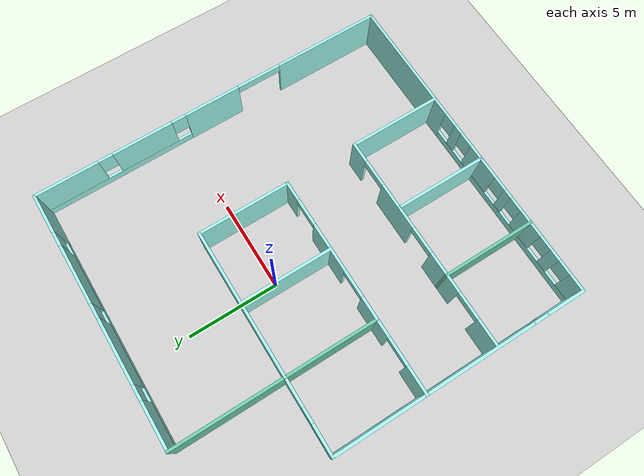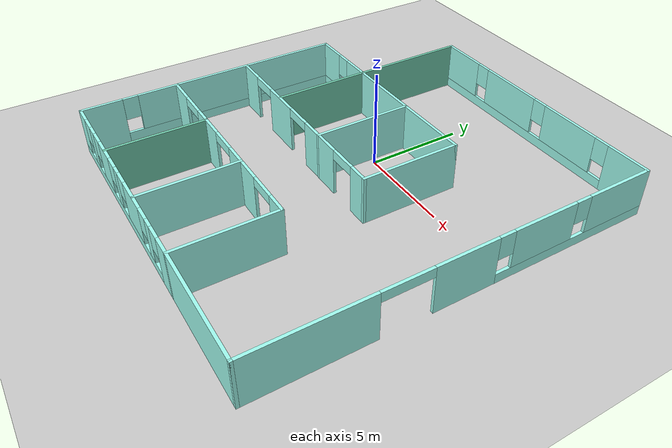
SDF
<sdf version="1.7">
 <world name="default">
  <light name="sun" type="directional">
   <pose>0 0 10 0 -0 0</pose>
   <diffuse>0.8 0.8 0.8 1</diffuse>
   <specular>0.2 0.2 0.2 1</specular>
   <attenuation>
    <range>1000</range>
    <constant>0.9</constant>
    <linear>0.01</linear>
    <quadratic>0.001</quadratic>
   </attenuation>
   <direction>-0.5 0.1 -0.9</direction>
   <spot><inner_angle>0</inner_angle><outer_angle>0</outer_angle><falloff>0</falloff></spot>
  </light>
  <model name="ground_plane">
   <static>1</static>
   <link name="link">
    <collision name="collision">
     <geometry><plane><normal>0 0 1</normal><size>100 100</size></plane></geometry>
     <surface>
      <contact><collide_bitmask>65535</collide_bitmask></contact>
      <friction><ode><mu>100</mu><mu2>50</mu2></ode></friction>
     </surface>
    </collision>
    <visual name="visual">
     <cast_shadows>0</cast_shadows>
     <geometry><plane><normal>0 0 1</normal><size>100 100</size></plane></geometry>
     <material>
      <script><uri>file://media/materials/scripts/gazebo.material</uri><name>Gazebo/Grey</name></script>
     </material>
    </visual>
   </link>
  </model>
  <gravity>0 0 -9.8</gravity>
  <magnetic_field>6e-06 2.3e-05 -4.2e-05</magnetic_field>
  <atmosphere type="adiabatic"/>
  <physics type="ode">
   <max_step_size>0.001</max_step_size>
   <real_time_factor>1</real_time_factor>
   <real_time_update_rate>1000</real_time_update_rate>
  </physics>
  <scene><ambient>0.4 0.4 0.4 1</ambient><background>0.7 0.7 0.7 1</background><shadows>1</shadows></scene>
  <spherical_coordinates>
   <surface_model>EARTH_WGS84</surface_model>
   <latitude_deg>0</latitude_deg>
   <longitude_deg>0</longitude_deg>
   <elevation>0</elevation>
   <heading_deg>0</heading_deg>
  </spherical_coordinates>
  <model name="Building">
   <pose>0.605787 -1.9571 0 0 -0 1.57079</pose>
   <link name="Wall_0">
    <pose>-10 0 0 0 -0 1.5708</pose>
    <visual name="Wall_0_Visual_0">
     <pose>-5.53335 0 1.25 0 -0 0</pose>
     <geometry><box><size>7.0833 0.15 2.5</size></box></geometry>
     <material>
      <script><uri>file://media/materials/scripts/gazebo.material</uri><name>Gazebo/Grey</name></script>
      <ambient>0.635294 0.996078 0.945098 1</ambient>
     </material>
     <meta><layer>0</layer></meta>
    </visual>
    <collision name="Wall_0_Collision_0">
     <geometry><box><size>7.0833 0.15 2.5</size></box></geometry>
     <pose>-5.53335 0 1.25 0 -0 0</pose>
    </collision>
    <visual name="Wall_0_Visual_1">
     <pose>3.54165 0 0.25 0 -0 0</pose>
     <geometry><box><size>11.0667 0.15 0.5</size></box></geometry>
     <material>
      <script><uri>file://media/materials/scripts/gazebo.material</uri><name>Gazebo/Grey</name></script>
      <ambient>0.635294 0.996078 0.945098 1</ambient>
     </material>
     <meta><layer>0</layer></meta>
    </visual>
    <collision name="Wall_0_Collision_1">
     <geometry><box><size>11.0667 0.15 0.5</size></box></geometry>
     <pose>3.54165 0 0.25 0 -0 0</pose>
    </collision>
    <visual name="Wall_0_Visual_2">
     <pose>-0.917108 0 1.5 0 -0 0</pose>
     <geometry><box><size>0.549194 0.15 2</size></box></geometry>
     <material>
      <script><uri>file://media/materials/scripts/gazebo.material</uri><name>Gazebo/Grey</name></script>
      <ambient>0.635294 0.996078 0.945098 1</ambient>
     </material>
     <meta><layer>0</layer></meta>
    </visual>
    <collision name="Wall_0_Collision_2">
     <geometry><box><size>0.549194 0.15 2</size></box></geometry>
     <pose>-0.917108 0 1.5 0 -0 0</pose>
    </collision>
    <visual name="Wall_0_Visual_3">
     <pose>1.17647 0 1.5 0 -0 0</pose>
     <geometry><box><size>2.03796 0.15 2</size></box></geometry>
     <material>
      <script><uri>file://media/materials/scripts/gazebo.material</uri><name>Gazebo/Grey</name></script>
      <ambient>0.635294 0.996078 0.945098 1</ambient>
     </material>
     <meta><layer>0</layer></meta>
    </visual>
    <collision name="Wall_0_Collision_3">
     <geometry><box><size>2.03796 0.15 2</size></box></geometry>
     <pose>1.17647 0 1.5 0 -0 0</pose>
    </collision>
    <visual name="Wall_0_Visual_4">
     <pose>3.24678 0 1.5 0 -0 0</pose>
     <geometry><box><size>0.50267 0.15 2</size></box></geometry>
     <material>
      <script><uri>file://media/materials/scripts/gazebo.material</uri><name>Gazebo/Grey</name></script>
      <ambient>0.635294 0.996078 0.945098 1</ambient>
     </material>
     <meta><layer>0</layer></meta>
    </visual>
    <collision name="Wall_0_Collision_4">
     <geometry><box><size>0.50267 0.15 2</size></box></geometry>
     <pose>3.24678 0 1.5 0 -0 0</pose>
    </collision>
    <visual name="Wall_0_Visual_5">
     <pose>5.06121 0 1.5 0 -0 0</pose>
     <geometry><box><size>1.5262 0.15 2</size></box></geometry>
     <material>
      <script><uri>file://media/materials/scripts/gazebo.material</uri><name>Gazebo/Grey</name></script>
      <ambient>0.635294 0.996078 0.945098 1</ambient>
     </material>
     <meta><layer>0</layer></meta>
    </visual>
    <collision name="Wall_0_Collision_5">
     <geometry><box><size>1.5262 0.15 2</size></box></geometry>
     <pose>5.06121 0 1.5 0 -0 0</pose>
    </collision>
    <visual name="Wall_0_Visual_6">
     <pose>6.94543 0 1.5 0 -0 0</pose>
     <geometry><box><size>0.642243 0.15 2</size></box></geometry>
     <material>
      <script><uri>file://media/materials/scripts/gazebo.material</uri><name>Gazebo/Grey</name></script>
      <ambient>0.635294 0.996078 0.945098 1</ambient>
     </material>
     <meta><layer>0</layer></meta>
    </visual>
    <collision name="Wall_0_Collision_6">
     <geometry><box><size>0.642243 0.15 2</size></box></geometry>
     <pose>6.94543 0 1.5 0 -0 0</pose>
    </collision>
    <visual name="Wall_0_Visual_7">
     <pose>8.57078 0 1.5 0 -0 0</pose>
     <geometry><box><size>1.00845 0.15 2</size></box></geometry>
     <material>
      <script><uri>file://media/materials/scripts/gazebo.material</uri><name>Gazebo/Grey</name></script>
      <ambient>0.635294 0.996078 0.945098 1</ambient>
     </material>
     <meta><layer>0</layer></meta>
    </visual>
    <collision name="Wall_0_Collision_7">
     <geometry><box><size>1.00845 0.15 2</size></box></geometry>
     <pose>8.57078 0 1.5 0 -0 0</pose>
    </collision>
    <visual name="Wall_0_Visual_8">
     <pose>-1.5917 0 1.9 0 -0 0</pose>
     <geometry><box><size>0.8 0.15 1.2</size></box></geometry>
     <material>
      <script><uri>file://media/materials/scripts/gazebo.material</uri><name>Gazebo/Grey</name></script>
      <ambient>0.635294 0.996078 0.945098 1</ambient>
     </material>
     <meta><layer>0</layer></meta>
    </visual>
    <collision name="Wall_0_Collision_8">
     <geometry><box><size>0.8 0.15 1.2</size></box></geometry>
     <pose>-1.5917 0 1.9 0 -0 0</pose>
    </collision>
    <visual name="Wall_0_Visual_9">
     <pose>-0.242511 0 1.9 0 -0 0</pose>
     <geometry><box><size>0.8 0.15 1.2</size></box></geometry>
     <material>
      <script><uri>file://media/materials/scripts/gazebo.material</uri><name>Gazebo/Grey</name></script>
      <ambient>0.635294 0.996078 0.945098 1</ambient>
     </material>
     <meta><layer>0</layer></meta>
    </visual>
    <collision name="Wall_0_Collision_9">
     <geometry><box><size>0.8 0.15 1.2</size></box></geometry>
     <pose>-0.242511 0 1.9 0 -0 0</pose>
    </collision>
    <visual name="Wall_0_Visual_10">
     <pose>2.59545 0 1.9 0 -0 0</pose>
     <geometry><box><size>0.8 0.15 1.2</size></box></geometry>
     <material>
      <script><uri>file://media/materials/scripts/gazebo.material</uri><name>Gazebo/Grey</name></script>
      <ambient>0.635294 0.996078 0.945098 1</ambient>
     </material>
     <meta><layer>0</layer></meta>
    </visual>
    <collision name="Wall_0_Collision_10">
     <geometry><box><size>0.8 0.15 1.2</size></box></geometry>
     <pose>2.59545 0 1.9 0 -0 0</pose>
    </collision>
    <visual name="Wall_0_Visual_11">
     <pose>3.89812 0 1.9 0 -0 0</pose>
     <geometry><box><size>0.8 0.15 1.2</size></box></geometry>
     <material>
      <script><uri>file://media/materials/scripts/gazebo.material</uri><name>Gazebo/Grey</name></script>
      <ambient>0.635294 0.996078 0.945098 1</ambient>
     </material>
     <meta><layer>0</layer></meta>
    </visual>
    <collision name="Wall_0_Collision_11">
     <geometry><box><size>0.8 0.15 1.2</size></box></geometry>
     <pose>3.89812 0 1.9 0 -0 0</pose>
    </collision>
    <visual name="Wall_0_Visual_12">
     <pose>6.22431 0 1.9 0 -0 0</pose>
     <geometry><box><size>0.8 0.15 1.2</size></box></geometry>
     <material>
      <script><uri>file://media/materials/scripts/gazebo.material</uri><name>Gazebo/Grey</name></script>
      <ambient>0.635294 0.996078 0.945098 1</ambient>
     </material>
     <meta><layer>0</layer></meta>
    </visual>
    <collision name="Wall_0_Collision_12">
     <geometry><box><size>0.8 0.15 1.2</size></box></geometry>
     <pose>6.22431 0 1.9 0 -0 0</pose>
    </collision>
    <visual name="Wall_0_Visual_13">
     <pose>7.66655 0 1.9 0 -0 0</pose>
     <geometry><box><size>0.8 0.15 1.2</size></box></geometry>
     <material>
      <script><uri>file://media/materials/scripts/gazebo.material</uri><name>Gazebo/Grey</name></script>
      <ambient>0.635294 0.996078 0.945098 1</ambient>
     </material>
     <meta><layer>0</layer></meta>
    </visual>
    <collision name="Wall_0_Collision_13">
     <geometry><box><size>0.8 0.15 1.2</size></box></geometry>
     <pose>7.66655 0 1.9 0 -0 0</pose>
    </collision>
   </link>
   <link name="Wall_10">
    <pose>10 -2 0 0 -0 1.5708</pose>
    <visual name="Wall_10_Visual_0">
     <pose>-5.92933 0 1.25 0 -0 0</pose>
     <geometry><box><size>2.29133 0.15 2.5</size></box></geometry>
     <material>
      <script><uri>file://media/materials/scripts/gazebo.material</uri><name>Gazebo/Grey</name></script>
      <ambient>0.635294 0.996078 0.945098 1</ambient>
     </material>
     <meta><layer>0</layer></meta>
    </visual>
    <collision name="Wall_10_Collision_0">
     <geometry><box><size>2.29133 0.15 2.5</size></box></geometry>
     <pose>-5.92933 0 1.25 0 -0 0</pose>
    </collision>
    <visual name="Wall_10_Visual_1">
     <pose>1.14567 0 0.25 0 -0 0</pose>
     <geometry><box><size>11.8587 0.15 0.5</size></box></geometry>
     <material>
      <script><uri>file://media/materials/scripts/gazebo.material</uri><name>Gazebo/Grey</name></script>
      <ambient>0.635294 0.996078 0.945098 1</ambient>
     </material>
     <meta><layer>0</layer></meta>
    </visual>
    <collision name="Wall_10_Collision_1">
     <geometry><box><size>11.8587 0.15 0.5</size></box></geometry>
     <pose>1.14567 0 0.25 0 -0 0</pose>
    </collision>
    <visual name="Wall_10_Visual_2">
     <pose>-2.3256 0 1.5 0 -0 0</pose>
     <geometry><box><size>3.31613 0.15 2</size></box></geometry>
     <material>
      <script><uri>file://media/materials/scripts/gazebo.material</uri><name>Gazebo/Grey</name></script>
      <ambient>0.635294 0.996078 0.945098 1</ambient>
     </material>
     <meta><layer>0</layer></meta>
    </visual>
    <collision name="Wall_10_Collision_2">
     <geometry><box><size>3.31613 0.15 2</size></box></geometry>
     <pose>-2.3256 0 1.5 0 -0 0</pose>
    </collision>
    <visual name="Wall_10_Visual_3">
     <pose>1.90807 0 1.5 0 -0 0</pose>
     <geometry><box><size>3.55122 0.15 2</size></box></geometry>
     <material>
      <script><uri>file://media/materials/scripts/gazebo.material</uri><name>Gazebo/Grey</name></script>
      <ambient>0.635294 0.996078 0.945098 1</ambient>
     </material>
     <meta><layer>0</layer></meta>
    </visual>
    <collision name="Wall_10_Collision_3">
     <geometry><box><size>3.55122 0.15 2</size></box></geometry>
     <pose>1.90807 0 1.5 0 -0 0</pose>
    </collision>
    <visual name="Wall_10_Visual_4">
     <pose>5.77934 0 1.5 0 -0 0</pose>
     <geometry><box><size>2.59131 0.15 2</size></box></geometry>
     <material>
      <script><uri>file://media/materials/scripts/gazebo.material</uri><name>Gazebo/Grey</name></script>
      <ambient>0.635294 0.996078 0.945098 1</ambient>
     </material>
     <meta><layer>0</layer></meta>
    </visual>
    <collision name="Wall_10_Collision_4">
     <geometry><box><size>2.59131 0.15 2</size></box></geometry>
     <pose>5.77934 0 1.5 0 -0 0</pose>
    </collision>
    <visual name="Wall_10_Visual_5">
     <pose>-4.38367 0 1.9 0 -0 0</pose>
     <geometry><box><size>0.8 0.15 1.2</size></box></geometry>
     <material>
      <script><uri>file://media/materials/scripts/gazebo.material</uri><name>Gazebo/Grey</name></script>
      <ambient>0.635294 0.996078 0.945098 1</ambient>
     </material>
     <meta><layer>0</layer></meta>
    </visual>
    <collision name="Wall_10_Collision_5">
     <geometry><box><size>0.8 0.15 1.2</size></box></geometry>
     <pose>-4.38367 0 1.9 0 -0 0</pose>
    </collision>
    <visual name="Wall_10_Visual_6">
     <pose>-0.267537 0 1.9 0 -0 0</pose>
     <geometry><box><size>0.8 0.15 1.2</size></box></geometry>
     <material>
      <script><uri>file://media/materials/scripts/gazebo.material</uri><name>Gazebo/Grey</name></script>
      <ambient>0.635294 0.996078 0.945098 1</ambient>
     </material>
     <meta><layer>0</layer></meta>
    </visual>
    <collision name="Wall_10_Collision_6">
     <geometry><box><size>0.8 0.15 1.2</size></box></geometry>
     <pose>-0.267537 0 1.9 0 -0 0</pose>
    </collision>
    <visual name="Wall_10_Visual_7">
     <pose>4.08369 0 1.9 0 -0 0</pose>
     <geometry><box><size>0.8 0.15 1.2</size></box></geometry>
     <material>
      <script><uri>file://media/materials/scripts/gazebo.material</uri><name>Gazebo/Grey</name></script>
      <ambient>0.635294 0.996078 0.945098 1</ambient>
     </material>
     <meta><layer>0</layer></meta>
    </visual>
    <collision name="Wall_10_Collision_7">
     <geometry><box><size>0.8 0.15 1.2</size></box></geometry>
     <pose>4.08369 0 1.9 0 -0 0</pose>
    </collision>
   </link>
   <link name="Wall_12">
    <pose>-5 3 0 0 -0 1.5708</pose>
    <visual name="Wall_12_Visual_0">
     <pose>-5.49899 0 1.25 0 -0 0</pose>
     <geometry><box><size>1.15201 0.15 2.5</size></box></geometry>
     <material>
      <script><uri>file://media/materials/scripts/gazebo.material</uri><name>Gazebo/Grey</name></script>
      <ambient>0.635294 0.996078 0.945098 1</ambient>
     </material>
     <meta><layer>0</layer></meta>
    </visual>
    <collision name="Wall_12_Collision_0">
     <geometry><box><size>1.15201 0.15 2.5</size></box></geometry>
     <pose>-5.49899 0 1.25 0 -0 0</pose>
    </collision>
    <visual name="Wall_12_Visual_1">
     <pose>-2.10268 0 1.25 0 -0 0</pose>
     <geometry><box><size>2.64063 0.15 2.5</size></box></geometry>
     <material>
      <script><uri>file://media/materials/scripts/gazebo.material</uri><name>Gazebo/Grey</name></script>
      <ambient>0.635294 0.996078 0.945098 1</ambient>
     </material>
     <meta><layer>0</layer></meta>
    </visual>
    <collision name="Wall_12_Collision_1">
     <geometry><box><size>2.64063 0.15 2.5</size></box></geometry>
     <pose>-2.10268 0 1.25 0 -0 0</pose>
    </collision>
    <visual name="Wall_12_Visual_2">
     <pose>1.85186 0 1.25 0 -0 0</pose>
     <geometry><box><size>2.26844 0.15 2.5</size></box></geometry>
     <material>
      <script><uri>file://media/materials/scripts/gazebo.material</uri><name>Gazebo/Grey</name></script>
      <ambient>0.635294 0.996078 0.945098 1</ambient>
     </material>
     <meta><layer>0</layer></meta>
    </visual>
    <collision name="Wall_12_Collision_2">
     <geometry><box><size>2.26844 0.15 2.5</size></box></geometry>
     <pose>1.85186 0 1.25 0 -0 0</pose>
    </collision>
    <visual name="Wall_12_Visual_3">
     <pose>5.28054 0 1.25 0 -0 0</pose>
     <geometry><box><size>1.58892 0.15 2.5</size></box></geometry>
     <material>
      <script><uri>file://media/materials/scripts/gazebo.material</uri><name>Gazebo/Grey</name></script>
      <ambient>0.635294 0.996078 0.945098 1</ambient>
     </material>
     <meta><layer>0</layer></meta>
    </visual>
    <collision name="Wall_12_Collision_3">
     <geometry><box><size>1.58892 0.15 2.5</size></box></geometry>
     <pose>5.28054 0 1.25 0 -0 0</pose>
    </collision>
    <visual name="Wall_12_Visual_4">
     <pose>-4.17299 0 2.25 0 -0 0</pose>
     <geometry><box><size>1.5 0.15 0.5</size></box></geometry>
     <material>
      <script><uri>file://media/materials/scripts/gazebo.material</uri><name>Gazebo/Grey</name></script>
      <ambient>0.635294 0.996078 0.945098 1</ambient>
     </material>
     <meta><layer>0</layer></meta>
    </visual>
    <collision name="Wall_12_Collision_4">
     <geometry><box><size>1.5 0.15 0.5</size></box></geometry>
     <pose>-4.17299 0 2.25 0 -0 0</pose>
    </collision>
    <visual name="Wall_12_Visual_5">
     <pose>-0.032361 0 2.25 0 -0 0</pose>
     <geometry><box><size>1.5 0.15 0.5</size></box></geometry>
     <material>
      <script><uri>file://media/materials/scripts/gazebo.material</uri><name>Gazebo/Grey</name></script>
      <ambient>0.635294 0.996078 0.945098 1</ambient>
     </material>
     <meta><layer>0</layer></meta>
    </visual>
    <collision name="Wall_12_Collision_5">
     <geometry><box><size>1.5 0.15 0.5</size></box></geometry>
     <pose>-0.032361 0 2.25 0 -0 0</pose>
    </collision>
    <visual name="Wall_12_Visual_6">
     <pose>3.73608 0 2.25 0 -0 0</pose>
     <geometry><box><size>1.5 0.15 0.5</size></box></geometry>
     <material>
      <script><uri>file://media/materials/scripts/gazebo.material</uri><name>Gazebo/Grey</name></script>
      <ambient>0.635294 0.996078 0.945098 1</ambient>
     </material>
     <meta><layer>0</layer></meta>
    </visual>
    <collision name="Wall_12_Collision_6">
     <geometry><box><size>1.5 0.15 0.5</size></box></geometry>
     <pose>3.73608 0 2.25 0 -0 0</pose>
    </collision>
   </link>
   <link name="Wall_14">
    <pose>-1 3 0 0 -0 1.5708</pose>
    <visual name="Wall_14_Visual_0">
     <pose>-5.52226 0 1.25 0 -0 0</pose>
     <geometry><box><size>1.10549 0.15 2.5</size></box></geometry>
     <material>
      <script><uri>file://media/materials/scripts/gazebo.material</uri><name>Gazebo/Grey</name></script>
      <ambient>0.635294 0.996078 0.945098 1</ambient>
     </material>
     <meta><layer>0</layer></meta>
    </visual>
    <collision name="Wall_14_Collision_0">
     <geometry><box><size>1.10549 0.15 2.5</size></box></geometry>
     <pose>-5.52226 0 1.25 0 -0 0</pose>
    </collision>
    <visual name="Wall_14_Visual_1">
     <pose>-2.10268 0 1.25 0 -0 0</pose>
     <geometry><box><size>2.73368 0.15 2.5</size></box></geometry>
     <material>
      <script><uri>file://media/materials/scripts/gazebo.material</uri><name>Gazebo/Grey</name></script>
      <ambient>0.635294 0.996078 0.945098 1</ambient>
     </material>
     <meta><layer>0</layer></meta>
    </visual>
    <collision name="Wall_14_Collision_1">
     <geometry><box><size>2.73368 0.15 2.5</size></box></geometry>
     <pose>-2.10268 0 1.25 0 -0 0</pose>
    </collision>
    <visual name="Wall_14_Visual_2">
     <pose>1.87512 0 1.25 0 -0 0</pose>
     <geometry><box><size>2.22191 0.15 2.5</size></box></geometry>
     <material>
      <script><uri>file://media/materials/scripts/gazebo.material</uri><name>Gazebo/Grey</name></script>
      <ambient>0.635294 0.996078 0.945098 1</ambient>
     </material>
     <meta><layer>0</layer></meta>
    </visual>
    <collision name="Wall_14_Collision_2">
     <geometry><box><size>2.22191 0.15 2.5</size></box></geometry>
     <pose>1.87512 0 1.25 0 -0 0</pose>
    </collision>
    <visual name="Wall_14_Visual_3">
     <pose>5.28054 0 1.25 0 -0 0</pose>
     <geometry><box><size>1.58892 0.15 2.5</size></box></geometry>
     <material>
      <script><uri>file://media/materials/scripts/gazebo.material</uri><name>Gazebo/Grey</name></script>
      <ambient>0.635294 0.996078 0.945098 1</ambient>
     </material>
     <meta><layer>0</layer></meta>
    </visual>
    <collision name="Wall_14_Collision_3">
     <geometry><box><size>1.58892 0.15 2.5</size></box></geometry>
     <pose>5.28054 0 1.25 0 -0 0</pose>
    </collision>
    <visual name="Wall_14_Visual_4">
     <pose>-4.21951 0 2.25 0 -0 0</pose>
     <geometry><box><size>1.5 0.15 0.5</size></box></geometry>
     <material>
      <script><uri>file://media/materials/scripts/gazebo.material</uri><name>Gazebo/Grey</name></script>
      <ambient>0.635294 0.996078 0.945098 1</ambient>
     </material>
     <meta><layer>0</layer></meta>
    </visual>
    <collision name="Wall_14_Collision_4">
     <geometry><box><size>1.5 0.15 0.5</size></box></geometry>
     <pose>-4.21951 0 2.25 0 -0 0</pose>
    </collision>
    <visual name="Wall_14_Visual_5">
     <pose>0.014163 0 2.25 0 -0 0</pose>
     <geometry><box><size>1.5 0.15 0.5</size></box></geometry>
     <material>
      <script><uri>file://media/materials/scripts/gazebo.material</uri><name>Gazebo/Grey</name></script>
      <ambient>0.635294 0.996078 0.945098 1</ambient>
     </material>
     <meta><layer>0</layer></meta>
    </visual>
    <collision name="Wall_14_Collision_5">
     <geometry><box><size>1.5 0.15 0.5</size></box></geometry>
     <pose>0.014163 0 2.25 0 -0 0</pose>
    </collision>
    <visual name="Wall_14_Visual_6">
     <pose>3.73608 0 2.25 0 -0 0</pose>
     <geometry><box><size>1.5 0.15 0.5</size></box></geometry>
     <material>
      <script><uri>file://media/materials/scripts/gazebo.material</uri><name>Gazebo/Grey</name></script>
      <ambient>0.635294 0.996078 0.945098 1</ambient>
     </material>
     <meta><layer>0</layer></meta>
    </visual>
    <collision name="Wall_14_Collision_6">
     <geometry><box><size>1.5 0.15 0.5</size></box></geometry>
     <pose>3.73608 0 2.25 0 -0 0</pose>
    </collision>
   </link>
   <link name="Wall_16">
    <collision name="Wall_16_Collision">
     <geometry><box><size>5.15 0.15 2.5</size></box></geometry>
     <pose>0 0 1.25 0 -0 0</pose>
    </collision>
    <visual name="Wall_16_Visual">
     <pose>0 0 1.25 0 -0 0</pose>
     <geometry><box><size>5.15 0.15 2.5</size></box></geometry>
     <material>
      <script><uri>file://media/materials/scripts/gazebo.material</uri><name>Gazebo/Grey</name></script>
      <ambient>0.635294 0.996078 0.945098 1</ambient>
     </material>
     <meta><layer>0</layer></meta>
    </visual>
    <pose>-7.5 -3 0 0 -0 0</pose>
   </link>
   <link name="Wall_18">
    <collision name="Wall_18_Collision">
     <geometry><box><size>5.15 0.15 2.5</size></box></geometry>
     <pose>0 0 1.25 0 -0 0</pose>
    </collision>
    <visual name="Wall_18_Visual">
     <pose>0 0 1.25 0 -0 0</pose>
     <geometry><box><size>5.15 0.15 2.5</size></box></geometry>
     <material>
      <script><uri>file://media/materials/scripts/gazebo.material</uri><name>Gazebo/Grey</name></script>
      <ambient>0.635294 0.996078 0.945098 1</ambient>
     </material>
     <meta><layer>0</layer></meta>
    </visual>
    <pose>-7.5 1 0 0 -0 0</pose>
   </link>
   <link name="Wall_2">
    <pose>-3 9 0 0 -0 0</pose>
    <visual name="Wall_2_Visual_0">
     <pose>-5.99102 0 1.25 0 -0 0</pose>
     <geometry><box><size>2.16796 0.15 2.5</size></box></geometry>
     <material>
      <script><uri>file://media/materials/scripts/gazebo.material</uri><name>Gazebo/Grey</name></script>
      <ambient>0.635294 0.996078 0.945098 1</ambient>
     </material>
     <meta><layer>0</layer></meta>
    </visual>
    <collision name="Wall_2_Collision_0">
     <geometry><box><size>2.16796 0.15 2.5</size></box></geometry>
     <pose>-5.99102 0 1.25 0 -0 0</pose>
    </collision>
    <visual name="Wall_2_Visual_1">
     <pose>1.08398 0 0.25 0 -0 0</pose>
     <geometry><box><size>11.982 0.15 0.5</size></box></geometry>
     <material>
      <script><uri>file://media/materials/scripts/gazebo.material</uri><name>Gazebo/Grey</name></script>
      <ambient>0.635294 0.996078 0.945098 1</ambient>
     </material>
     <meta><layer>0</layer></meta>
    </visual>
    <collision name="Wall_2_Collision_1">
     <geometry><box><size>11.982 0.15 0.5</size></box></geometry>
     <pose>1.08398 0 0.25 0 -0 0</pose>
    </collision>
    <visual name="Wall_2_Visual_2">
     <pose>1.48398 0 1.5 0 -0 0</pose>
     <geometry><box><size>11.182 0.15 2</size></box></geometry>
     <material>
      <script><uri>file://media/materials/scripts/gazebo.material</uri><name>Gazebo/Grey</name></script>
      <ambient>0.635294 0.996078 0.945098 1</ambient>
     </material>
     <meta><layer>0</layer></meta>
    </visual>
    <collision name="Wall_2_Collision_2">
     <geometry><box><size>11.182 0.15 2</size></box></geometry>
     <pose>1.48398 0 1.5 0 -0 0</pose>
    </collision>
    <visual name="Wall_2_Visual_3">
     <pose>-4.50704 0 1.9 0 -0 0</pose>
     <geometry><box><size>0.8 0.15 1.2</size></box></geometry>
     <material>
      <script><uri>file://media/materials/scripts/gazebo.material</uri><name>Gazebo/Grey</name></script>
      <ambient>0.635294 0.996078 0.945098 1</ambient>
     </material>
     <meta><layer>0</layer></meta>
    </visual>
    <collision name="Wall_2_Collision_3">
     <geometry><box><size>0.8 0.15 1.2</size></box></geometry>
     <pose>-4.50704 0 1.9 0 -0 0</pose>
    </collision>
   </link>
   <link name="Wall_20">
    <collision name="Wall_20_Collision">
     <geometry><box><size>5.15 0.15 2.5</size></box></geometry>
     <pose>0 0 1.25 0 -0 0</pose>
    </collision>
    <visual name="Wall_20_Visual">
     <pose>0 0 1.25 0 -0 0</pose>
     <geometry><box><size>5.15 0.15 2.5</size></box></geometry>
     <material>
      <script><uri>file://media/materials/scripts/gazebo.material</uri><name>Gazebo/Grey</name></script>
      <ambient>0.435294 0.796078 0.67451 1</ambient>
     </material>
     <meta><layer>0</layer></meta>
    </visual>
    <pose>-7.5 5 0 0 -0 0</pose>
   </link>
   <link name="Wall_22">
    <collision name="Wall_22_Collision">
     <geometry><box><size>5.15 0.15 2.5</size></box></geometry>
     <pose>0 0 1.25 0 -0 0</pose>
    </collision>
    <visual name="Wall_22_Visual">
     <pose>0 0 1.25 0 -0 0</pose>
     <geometry><box><size>5.15 0.15 2.5</size></box></geometry>
     <material>
      <script><uri>file://media/materials/scripts/gazebo.material</uri><name>Gazebo/Grey</name></script>
      <ambient>0.435294 0.796078 0.67451 1</ambient>
     </material>
     <meta><layer>0</layer></meta>
    </visual>
    <pose>1.5 5 0 0 -0 0</pose>
   </link>
   <link name="Wall_24">
    <collision name="Wall_24_Collision">
     <geometry><box><size>5.15 0.15 2.5</size></box></geometry>
     <pose>0 0 1.25 0 -0 0</pose>
    </collision>
    <visual name="Wall_24_Visual">
     <pose>0 0 1.25 0 -0 0</pose>
     <geometry><box><size>5.15 0.15 2.5</size></box></geometry>
     <material>
      <script><uri>file://media/materials/scripts/gazebo.material</uri><name>Gazebo/Grey</name></script>
      <ambient>0.635294 0.996078 0.945098 1</ambient>
     </material>
     <meta><layer>0</layer></meta>
    </visual>
    <pose>1.5 1 0 0 -0 0</pose>
   </link>
   <link name="Wall_26">
    <collision name="Wall_26_Collision">
     <geometry><box><size>5.15 0.15 2.5</size></box></geometry>
     <pose>0 0 1.25 0 -0 0</pose>
    </collision>
    <visual name="Wall_26_Visual">
     <pose>0 0 1.25 0 -0 0</pose>
     <geometry><box><size>5.15 0.15 2.5</size></box></geometry>
     <material>
      <script><uri>file://media/materials/scripts/gazebo.material</uri><name>Gazebo/Grey</name></script>
      <ambient>0.635294 0.996078 0.945098 1</ambient>
     </material>
     <meta><layer>0</layer></meta>
    </visual>
    <pose>1.5 -3 0 0 -0 0</pose>
   </link>
   <link name="Wall_28">
    <collision name="Wall_28_Collision">
     <geometry><box><size>8.15 0.15 2.5</size></box></geometry>
     <pose>0 0 1.25 0 -0 0</pose>
    </collision>
    <visual name="Wall_28_Visual">
     <pose>0 0 1.25 0 -0 0</pose>
     <geometry><box><size>8.15 0.15 2.5</size></box></geometry>
     <material>
      <script><uri>file://media/materials/scripts/gazebo.material</uri><name>Gazebo/Grey</name></script>
      <ambient>0.635294 0.996078 0.945098 1</ambient>
     </material>
     <meta><layer>0</layer></meta>
    </visual>
    <pose>4 1 0 0 -0 1.5708</pose>
   </link>
   <link name="Wall_4">
    <pose>4 7 0 0 -0 1.5708</pose>
    <visual name="Wall_4_Visual_0">
     <pose>-1.26406 0 1.25 0 -0 0</pose>
     <geometry><box><size>1.62188 0.15 2.5</size></box></geometry>
     <material>
      <script><uri>file://media/materials/scripts/gazebo.material</uri><name>Gazebo/Grey</name></script>
      <ambient>0.635294 0.996078 0.945098 1</ambient>
     </material>
     <meta><layer>0</layer></meta>
    </visual>
    <collision name="Wall_4_Collision_0">
     <geometry><box><size>1.62188 0.15 2.5</size></box></geometry>
     <pose>-1.26406 0 1.25 0 -0 0</pose>
    </collision>
    <visual name="Wall_4_Visual_1">
     <pose>0.810938 0 0.25 0 -0 0</pose>
     <geometry><box><size>2.52812 0.15 0.5</size></box></geometry>
     <material>
      <script><uri>file://media/materials/scripts/gazebo.material</uri><name>Gazebo/Grey</name></script>
      <ambient>0.635294 0.996078 0.945098 1</ambient>
     </material>
     <meta><layer>0</layer></meta>
    </visual>
    <collision name="Wall_4_Collision_1">
     <geometry><box><size>2.52812 0.15 0.5</size></box></geometry>
     <pose>0.810938 0 0.25 0 -0 0</pose>
    </collision>
    <visual name="Wall_4_Visual_2">
     <pose>1.21094 0 1.5 0 -0 0</pose>
     <geometry><box><size>1.72812 0.15 2</size></box></geometry>
     <material>
      <script><uri>file://media/materials/scripts/gazebo.material</uri><name>Gazebo/Grey</name></script>
      <ambient>0.635294 0.996078 0.945098 1</ambient>
     </material>
     <meta><layer>0</layer></meta>
    </visual>
    <collision name="Wall_4_Collision_2">
     <geometry><box><size>1.72812 0.15 2</size></box></geometry>
     <pose>1.21094 0 1.5 0 -0 0</pose>
    </collision>
    <visual name="Wall_4_Visual_3">
     <pose>-0.053124 0 1.9 0 -0 0</pose>
     <geometry><box><size>0.8 0.15 1.2</size></box></geometry>
     <material>
      <script><uri>file://media/materials/scripts/gazebo.material</uri><name>Gazebo/Grey</name></script>
      <ambient>0.635294 0.996078 0.945098 1</ambient>
     </material>
     <meta><layer>0</layer></meta>
    </visual>
    <collision name="Wall_4_Collision_3">
     <geometry><box><size>0.8 0.15 1.2</size></box></geometry>
     <pose>-0.053124 0 1.9 0 -0 0</pose>
    </collision>
   </link>
   <link name="Wall_6">
    <collision name="Wall_6_Collision">
     <geometry><box><size>6.15 0.15 2.5</size></box></geometry>
     <pose>0 0 1.25 0 -0 0</pose>
    </collision>
    <visual name="Wall_6_Visual">
     <pose>0 0 1.25 0 -0 0</pose>
     <geometry><box><size>6.15 0.15 2.5</size></box></geometry>
     <material>
      <script><uri>file://media/materials/scripts/gazebo.material</uri><name>Gazebo/Grey</name></script>
      <ambient>0.435294 0.796078 0.67451 1</ambient>
     </material>
     <meta><layer>0</layer></meta>
    </visual>
    <pose>7 5 0 0 -0 0</pose>
   </link>
   <link name="Wall_8">
    <pose>0 -9 0 0 -0 0</pose>
    <visual name="Wall_8_Visual_0">
     <pose>-7.10175 0 1.25 0 -0 0</pose>
     <geometry><box><size>5.94651 0.15 2.5</size></box></geometry>
     <material>
      <script><uri>file://media/materials/scripts/gazebo.material</uri><name>Gazebo/Grey</name></script>
      <ambient>0.635294 0.996078 0.945098 1</ambient>
     </material>
     <meta><layer>0</layer></meta>
    </visual>
    <collision name="Wall_8_Collision_0">
     <geometry><box><size>5.94651 0.15 2.5</size></box></geometry>
     <pose>-7.10175 0 1.25 0 -0 0</pose>
    </collision>
    <visual name="Wall_8_Visual_1">
     <pose>-0.057512 0 1.25 0 -0 0</pose>
     <geometry><box><size>3.14196 0.15 2.5</size></box></geometry>
     <material>
      <script><uri>file://media/materials/scripts/gazebo.material</uri><name>Gazebo/Grey</name></script>
      <ambient>0.635294 0.996078 0.945098 1</ambient>
     </material>
     <meta><layer>0</layer></meta>
    </visual>
    <collision name="Wall_8_Collision_1">
     <geometry><box><size>3.14196 0.15 2.5</size></box></geometry>
     <pose>-0.057512 0 1.25 0 -0 0</pose>
    </collision>
    <visual name="Wall_8_Visual_2">
     <pose>5.79423 0 0.25 0 -0 0</pose>
     <geometry><box><size>8.56153 0.15 0.5</size></box></geometry>
     <material>
      <script><uri>file://media/materials/scripts/gazebo.material</uri><name>Gazebo/Grey</name></script>
      <ambient>0.635294 0.996078 0.945098 1</ambient>
     </material>
     <meta><layer>0</layer></meta>
    </visual>
    <collision name="Wall_8_Collision_2">
     <geometry><box><size>8.56153 0.15 0.5</size></box></geometry>
     <pose>5.79423 0 0.25 0 -0 0</pose>
    </collision>
    <visual name="Wall_8_Visual_3">
     <pose>4.00705 0 1.5 0 -0 0</pose>
     <geometry><box><size>3.38715 0.15 2</size></box></geometry>
     <material>
      <script><uri>file://media/materials/scripts/gazebo.material</uri><name>Gazebo/Grey</name></script>
      <ambient>0.635294 0.996078 0.945098 1</ambient>
     </material>
     <meta><layer>0</layer></meta>
    </visual>
    <collision name="Wall_8_Collision_3">
     <geometry><box><size>3.38715 0.15 2</size></box></geometry>
     <pose>4.00705 0 1.5 0 -0 0</pose>
    </collision>
    <visual name="Wall_8_Visual_4">
     <pose>8.28781 0 1.5 0 -0 0</pose>
     <geometry><box><size>3.57438 0.15 2</size></box></geometry>
     <material>
      <script><uri>file://media/materials/scripts/gazebo.material</uri><name>Gazebo/Grey</name></script>
      <ambient>0.635294 0.996078 0.945098 1</ambient>
     </material>
     <meta><layer>0</layer></meta>
    </visual>
    <collision name="Wall_8_Collision_4">
     <geometry><box><size>3.57438 0.15 2</size></box></geometry>
     <pose>8.28781 0 1.5 0 -0 0</pose>
    </collision>
    <visual name="Wall_8_Visual_5">
     <pose>1.91347 0 1.9 0 -0 0</pose>
     <geometry><box><size>0.8 0.15 1.2</size></box></geometry>
     <material>
      <script><uri>file://media/materials/scripts/gazebo.material</uri><name>Gazebo/Grey</name></script>
      <ambient>0.635294 0.996078 0.945098 1</ambient>
     </material>
     <meta><layer>0</layer></meta>
    </visual>
    <collision name="Wall_8_Collision_5">
     <geometry><box><size>0.8 0.15 1.2</size></box></geometry>
     <pose>1.91347 0 1.9 0 -0 0</pose>
    </collision>
    <visual name="Wall_8_Visual_6">
     <pose>6.10062 0 1.9 0 -0 0</pose>
     <geometry><box><size>0.8 0.15 1.2</size></box></geometry>
     <material>
      <script><uri>file://media/materials/scripts/gazebo.material</uri><name>Gazebo/Grey</name></script>
      <ambient>0.635294 0.996078 0.945098 1</ambient>
     </material>
     <meta><layer>0</layer></meta>
    </visual>
    <collision name="Wall_8_Collision_6">
     <geometry><box><size>0.8 0.15 1.2</size></box></geometry>
     <pose>6.10062 0 1.9 0 -0 0</pose>
    </collision>
    <visual name="Wall_8_Visual_7">
     <pose>-2.87849 0 2.25 0 -0 0</pose>
     <geometry><box><size>2.5 0.15 0.5</size></box></geometry>
     <material>
      <script><uri>file://media/materials/scripts/gazebo.material</uri><name>Gazebo/Grey</name></script>
      <ambient>0.635294 0.996078 0.945098 1</ambient>
     </material>
     <meta><layer>0</layer></meta>
    </visual>
    <collision name="Wall_8_Collision_7">
     <geometry><box><size>2.5 0.15 0.5</size></box></geometry>
     <pose>-2.87849 0 2.25 0 -0 0</pose>
    </collision>
   </link>
   <static>1</static>
  </model>
 </world>
</sdf>
